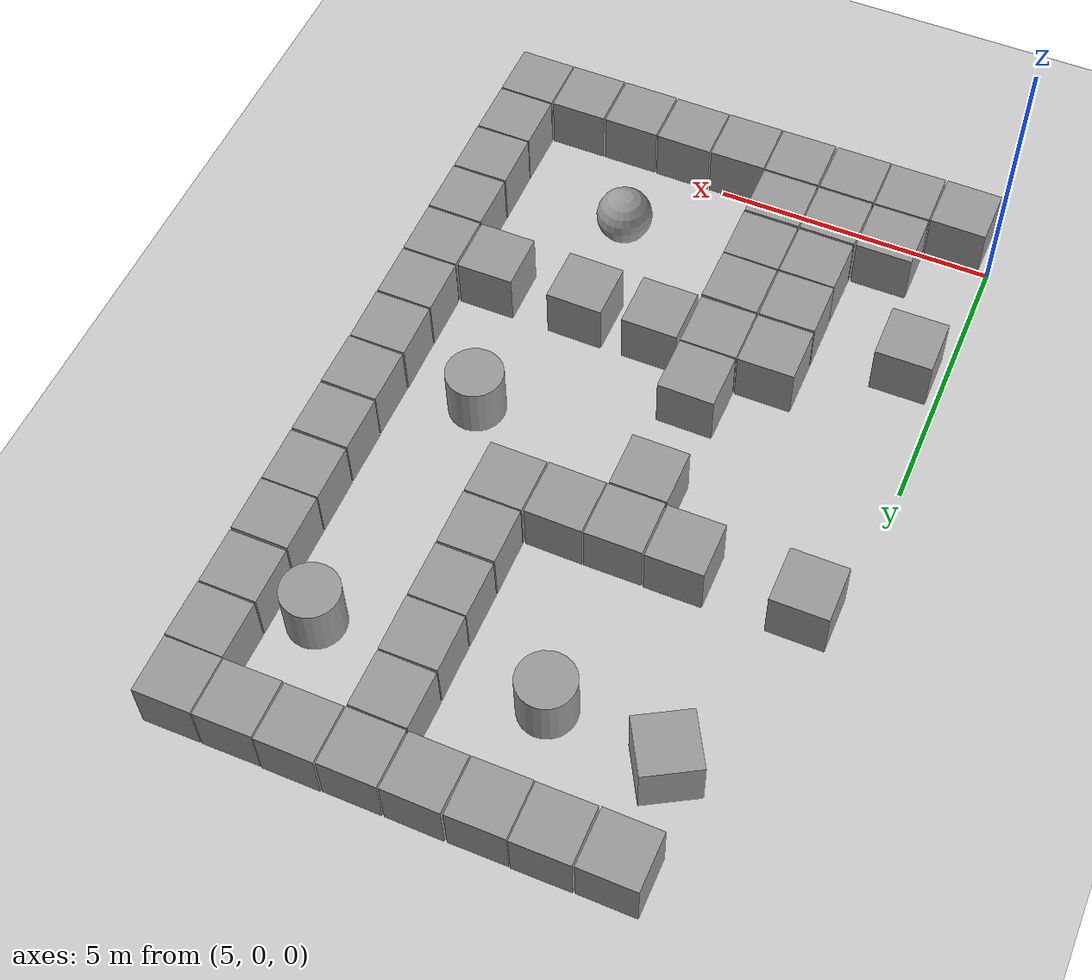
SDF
<sdf version="1.6">
 <world name="hub_mix">
  <include><uri>model://ground_plane</uri></include>
  <include><uri>model://sun</uri></include>
  <model name="unit_box_6">
   <pose>5.6816 -0.5055 0.5 0 0 -0.00564</pose>
   <link name="link">
    <inertial>
     <mass>1</mass>
     <inertia>
      <ixx>0.166667</ixx>
      <ixy>0</ixy>
      <ixz>0</ixz>
      <iyy>0.166667</iyy>
      <iyz>0</iyz>
      <izz>0.166667</izz>
     </inertia>
    </inertial>
    <collision name="collision"><geometry><box><size>1 1 1</size></box></geometry></collision>
    <visual name="visual">
     <geometry><box><size>1 1 1</size></box></geometry>
     <material>
      <script><uri>file://media/materials/scripts/gazebo.material</uri><name>Gazebo/Grey</name></script>
     </material>
    </visual>
   </link>
  </model>
  <model name="unit_box_7">
   <pose>6.7125 -0.4992 0.5 0 0 0.00708</pose>
   <link name="link">
    <inertial>
     <mass>1</mass>
     <inertia>
      <ixx>0.166667</ixx>
      <ixy>0</ixy>
      <ixz>0</ixz>
      <iyy>0.166667</iyy>
      <iyz>0</iyz>
      <izz>0.166667</izz>
     </inertia>
    </inertial>
    <collision name="collision"><geometry><box><size>1 1 1</size></box></geometry></collision>
    <visual name="visual">
     <geometry><box><size>1 1 1</size></box></geometry>
     <material>
      <script><uri>file://media/materials/scripts/gazebo.material</uri><name>Gazebo/Grey</name></script>
     </material>
    </visual>
   </link>
  </model>
  <model name="unit_box_8">
   <pose>7.7346 -0.5032 0.5 0 0 0.00004</pose>
   <link name="link">
    <inertial>
     <mass>1</mass>
     <inertia>
      <ixx>0.166667</ixx>
      <ixy>0</ixy>
      <ixz>0</ixz>
      <iyy>0.166667</iyy>
      <iyz>0</iyz>
      <izz>0.166667</izz>
     </inertia>
    </inertial>
    <collision name="collision"><geometry><box><size>1 1 1</size></box></geometry></collision>
    <visual name="visual">
     <geometry><box><size>1 1 1</size></box></geometry>
     <material>
      <script><uri>file://media/materials/scripts/gazebo.material</uri><name>Gazebo/Grey</name></script>
     </material>
    </visual>
   </link>
  </model>
  <model name="unit_box_9">
   <pose>8.7730 -0.5037 0.5 0 0 0.00554</pose>
   <link name="link">
    <inertial>
     <mass>1</mass>
     <inertia>
      <ixx>0.166667</ixx>
      <ixy>0</ixy>
      <ixz>0</ixz>
      <iyy>0.166667</iyy>
      <iyz>0</iyz>
      <izz>0.166667</izz>
     </inertia>
    </inertial>
    <collision name="collision"><geometry><box><size>1 1 1</size></box></geometry></collision>
    <visual name="visual">
     <geometry><box><size>1 1 1</size></box></geometry>
     <material>
      <script><uri>file://media/materials/scripts/gazebo.material</uri><name>Gazebo/Grey</name></script>
     </material>
    </visual>
   </link>
  </model>
  <model name="unit_box_10">
   <pose>9.7989 -0.5023 0.5 0 0 0.00690</pose>
   <link name="link">
    <inertial>
     <mass>1</mass>
     <inertia>
      <ixx>0.166667</ixx>
      <ixy>0</ixy>
      <ixz>0</ixz>
      <iyy>0.166667</iyy>
      <iyz>0</iyz>
      <izz>0.166667</izz>
     </inertia>
    </inertial>
    <collision name="collision"><geometry><box><size>1 1 1</size></box></geometry></collision>
    <visual name="visual">
     <geometry><box><size>1 1 1</size></box></geometry>
     <material>
      <script><uri>file://media/materials/scripts/gazebo.material</uri><name>Gazebo/Grey</name></script>
     </material>
    </visual>
   </link>
  </model>
  <model name="unit_box_11">
   <pose>10.8253 -0.4948 0.5 0 0 -0.00397</pose>
   <link name="link">
    <inertial>
     <mass>1</mass>
     <inertia>
      <ixx>0.166667</ixx>
      <ixy>0</ixy>
      <ixz>0</ixz>
      <iyy>0.166667</iyy>
      <iyz>0</iyz>
      <izz>0.166667</izz>
     </inertia>
    </inertial>
    <collision name="collision"><geometry><box><size>1 1 1</size></box></geometry></collision>
    <visual name="visual">
     <geometry><box><size>1 1 1</size></box></geometry>
     <material>
      <script><uri>file://media/materials/scripts/gazebo.material</uri><name>Gazebo/Grey</name></script>
     </material>
    </visual>
   </link>
  </model>
  <model name="unit_box_12">
   <pose>11.8583 -0.5036 0.5 0 0 -0.00067</pose>
   <link name="link">
    <inertial>
     <mass>1</mass>
     <inertia>
      <ixx>0.166667</ixx>
      <ixy>0</ixy>
      <ixz>0</ixz>
      <iyy>0.166667</iyy>
      <iyz>0</iyz>
      <izz>0.166667</izz>
     </inertia>
    </inertial>
    <collision name="collision"><geometry><box><size>1 1 1</size></box></geometry></collision>
    <visual name="visual">
     <geometry><box><size>1 1 1</size></box></geometry>
     <material>
      <script><uri>file://media/materials/scripts/gazebo.material</uri><name>Gazebo/Grey</name></script>
     </material>
    </visual>
   </link>
  </model>
  <model name="unit_box_13">
   <pose>12.8941 -0.5033 0.5 0 0 0.00113</pose>
   <link name="link">
    <inertial>
     <mass>1</mass>
     <inertia>
      <ixx>0.166667</ixx>
      <ixy>0</ixy>
      <ixz>0</ixz>
      <iyy>0.166667</iyy>
      <iyz>0</iyz>
      <izz>0.166667</izz>
     </inertia>
    </inertial>
    <collision name="collision"><geometry><box><size>1 1 1</size></box></geometry></collision>
    <visual name="visual">
     <geometry><box><size>1 1 1</size></box></geometry>
     <material>
      <script><uri>file://media/materials/scripts/gazebo.material</uri><name>Gazebo/Grey</name></script>
     </material>
    </visual>
   </link>
  </model>
  <model name="unit_box_14">
   <pose>13.9193 -0.5024 0.5 0 0 -0.00775</pose>
   <link name="link">
    <inertial>
     <mass>1</mass>
     <inertia>
      <ixx>0.166667</ixx>
      <ixy>0</ixy>
      <ixz>0</ixz>
      <iyy>0.166667</iyy>
      <iyz>0</iyz>
      <izz>0.166667</izz>
     </inertia>
    </inertial>
    <collision name="collision"><geometry><box><size>1 1 1</size></box></geometry></collision>
    <visual name="visual">
     <geometry><box><size>1 1 1</size></box></geometry>
     <material>
      <script><uri>file://media/materials/scripts/gazebo.material</uri><name>Gazebo/Grey</name></script>
     </material>
    </visual>
   </link>
  </model>
  <model name="unit_box_22">
   <pose>6.7097 12.8861 0.5 0 0 -0.00467</pose>
   <link name="link">
    <inertial>
     <mass>1</mass>
     <inertia>
      <ixx>0.166667</ixx>
      <ixy>0</ixy>
      <ixz>0</ixz>
      <iyy>0.166667</iyy>
      <iyz>0</iyz>
      <izz>0.166667</izz>
     </inertia>
    </inertial>
    <collision name="collision"><geometry><box><size>1 1 1</size></box></geometry></collision>
    <visual name="visual">
     <geometry><box><size>1 1 1</size></box></geometry>
     <material>
      <script><uri>file://media/materials/scripts/gazebo.material</uri><name>Gazebo/Grey</name></script>
     </material>
    </visual>
   </link>
  </model>
  <model name="unit_box_23">
   <pose>7.7457 12.8936 0.5 0 0 0.00475</pose>
   <link name="link">
    <inertial>
     <mass>1</mass>
     <inertia>
      <ixx>0.166667</ixx>
      <ixy>0</ixy>
      <ixz>0</ixz>
      <iyy>0.166667</iyy>
      <iyz>0</iyz>
      <izz>0.166667</izz>
     </inertia>
    </inertial>
    <collision name="collision"><geometry><box><size>1 1 1</size></box></geometry></collision>
    <visual name="visual">
     <geometry><box><size>1 1 1</size></box></geometry>
     <material>
      <script><uri>file://media/materials/scripts/gazebo.material</uri><name>Gazebo/Grey</name></script>
     </material>
    </visual>
   </link>
  </model>
  <model name="unit_box_24">
   <pose>8.7683 12.8890 0.5 0 0 0.00429</pose>
   <link name="link">
    <inertial>
     <mass>1</mass>
     <inertia>
      <ixx>0.166667</ixx>
      <ixy>0</ixy>
      <ixz>0</ixz>
      <iyy>0.166667</iyy>
      <iyz>0</iyz>
      <izz>0.166667</izz>
     </inertia>
    </inertial>
    <collision name="collision"><geometry><box><size>1 1 1</size></box></geometry></collision>
    <visual name="visual">
     <geometry><box><size>1 1 1</size></box></geometry>
     <material>
      <script><uri>file://media/materials/scripts/gazebo.material</uri><name>Gazebo/Grey</name></script>
     </material>
    </visual>
   </link>
  </model>
  <model name="unit_box_25">
   <pose>9.8007 12.8917 0.5 0 0 -0.00973</pose>
   <link name="link">
    <inertial>
     <mass>1</mass>
     <inertia>
      <ixx>0.166667</ixx>
      <ixy>0</ixy>
      <ixz>0</ixz>
      <iyy>0.166667</iyy>
      <iyz>0</iyz>
      <izz>0.166667</izz>
     </inertia>
    </inertial>
    <collision name="collision"><geometry><box><size>1 1 1</size></box></geometry></collision>
    <visual name="visual">
     <geometry><box><size>1 1 1</size></box></geometry>
     <material>
      <script><uri>file://media/materials/scripts/gazebo.material</uri><name>Gazebo/Grey</name></script>
     </material>
    </visual>
   </link>
  </model>
  <model name="unit_box_26">
   <pose>10.8326 12.8864 0.5 0 0 -0.00361</pose>
   <link name="link">
    <inertial>
     <mass>1</mass>
     <inertia>
      <ixx>0.166667</ixx>
      <ixy>0</ixy>
      <ixz>0</ixz>
      <iyy>0.166667</iyy>
      <iyz>0</iyz>
      <izz>0.166667</izz>
     </inertia>
    </inertial>
    <collision name="collision"><geometry><box><size>1 1 1</size></box></geometry></collision>
    <visual name="visual">
     <geometry><box><size>1 1 1</size></box></geometry>
     <material>
      <script><uri>file://media/materials/scripts/gazebo.material</uri><name>Gazebo/Grey</name></script>
     </material>
    </visual>
   </link>
  </model>
  <model name="unit_box_27">
   <pose>11.8604 12.8954 0.5 0 0 -0.00198</pose>
   <link name="link">
    <inertial>
     <mass>1</mass>
     <inertia>
      <ixx>0.166667</ixx>
      <ixy>0</ixy>
      <ixz>0</ixz>
      <iyy>0.166667</iyy>
      <iyz>0</iyz>
      <izz>0.166667</izz>
     </inertia>
    </inertial>
    <collision name="collision"><geometry><box><size>1 1 1</size></box></geometry></collision>
    <visual name="visual">
     <geometry><box><size>1 1 1</size></box></geometry>
     <material>
      <script><uri>file://media/materials/scripts/gazebo.material</uri><name>Gazebo/Grey</name></script>
     </material>
    </visual>
   </link>
  </model>
  <model name="unit_box_28">
   <pose>12.8918 12.8865 0.5 0 0 0.00920</pose>
   <link name="link">
    <inertial>
     <mass>1</mass>
     <inertia>
      <ixx>0.166667</ixx>
      <ixy>0</ixy>
      <ixz>0</ixz>
      <iyy>0.166667</iyy>
      <iyz>0</iyz>
      <izz>0.166667</izz>
     </inertia>
    </inertial>
    <collision name="collision"><geometry><box><size>1 1 1</size></box></geometry></collision>
    <visual name="visual">
     <geometry><box><size>1 1 1</size></box></geometry>
     <material>
      <script><uri>file://media/materials/scripts/gazebo.material</uri><name>Gazebo/Grey</name></script>
     </material>
    </visual>
   </link>
  </model>
  <model name="unit_box_29">
   <pose>13.9170 12.8905 0.5 0 0 0.00379</pose>
   <link name="link">
    <inertial>
     <mass>1</mass>
     <inertia>
      <ixx>0.166667</ixx>
      <ixy>0</ixy>
      <ixz>0</ixz>
      <iyy>0.166667</iyy>
      <iyz>0</iyz>
      <izz>0.166667</izz>
     </inertia>
    </inertial>
    <collision name="collision"><geometry><box><size>1 1 1</size></box></geometry></collision>
    <visual name="visual">
     <geometry><box><size>1 1 1</size></box></geometry>
     <material>
      <script><uri>file://media/materials/scripts/gazebo.material</uri><name>Gazebo/Grey</name></script>
     </material>
    </visual>
   </link>
  </model>
  <model name="unit_box_42">
   <pose>13.9219 0.5238 0.5 0 0 -0.00483</pose>
   <link name="link">
    <inertial>
     <mass>1</mass>
     <inertia>
      <ixx>0.166667</ixx>
      <ixy>0</ixy>
      <ixz>0</ixz>
      <iyy>0.166667</iyy>
      <iyz>0</iyz>
      <izz>0.166667</izz>
     </inertia>
    </inertial>
    <collision name="collision"><geometry><box><size>1 1 1</size></box></geometry></collision>
    <visual name="visual">
     <geometry><box><size>1 1 1</size></box></geometry>
     <material>
      <script><uri>file://media/materials/scripts/gazebo.material</uri><name>Gazebo/Grey</name></script>
     </material>
    </visual>
   </link>
  </model>
  <model name="unit_box_43">
   <pose>13.9241 1.5502 0.5 0 0 0.00752</pose>
   <link name="link">
    <inertial>
     <mass>1</mass>
     <inertia>
      <ixx>0.166667</ixx>
      <ixy>0</ixy>
      <ixz>0</ixz>
      <iyy>0.166667</iyy>
      <iyz>0</iyz>
      <izz>0.166667</izz>
     </inertia>
    </inertial>
    <collision name="collision"><geometry><box><size>1 1 1</size></box></geometry></collision>
    <visual name="visual">
     <geometry><box><size>1 1 1</size></box></geometry>
     <material>
      <script><uri>file://media/materials/scripts/gazebo.material</uri><name>Gazebo/Grey</name></script>
     </material>
    </visual>
   </link>
  </model>
  <model name="unit_box_44">
   <pose>13.9260 2.5843 0.5 0 0 -0.00164</pose>
   <link name="link">
    <inertial>
     <mass>1</mass>
     <inertia>
      <ixx>0.166667</ixx>
      <ixy>0</ixy>
      <ixz>0</ixz>
      <iyy>0.166667</iyy>
      <iyz>0</iyz>
      <izz>0.166667</izz>
     </inertia>
    </inertial>
    <collision name="collision"><geometry><box><size>1 1 1</size></box></geometry></collision>
    <visual name="visual">
     <geometry><box><size>1 1 1</size></box></geometry>
     <material>
      <script><uri>file://media/materials/scripts/gazebo.material</uri><name>Gazebo/Grey</name></script>
     </material>
    </visual>
   </link>
  </model>
  <model name="unit_box_45">
   <pose>13.9228 3.6181 0.5 0 0 0.00011</pose>
   <link name="link">
    <inertial>
     <mass>1</mass>
     <inertia>
      <ixx>0.166667</ixx>
      <ixy>0</ixy>
      <ixz>0</ixz>
      <iyy>0.166667</iyy>
      <iyz>0</iyz>
      <izz>0.166667</izz>
     </inertia>
    </inertial>
    <collision name="collision"><geometry><box><size>1 1 1</size></box></geometry></collision>
    <visual name="visual">
     <geometry><box><size>1 1 1</size></box></geometry>
     <material>
      <script><uri>file://media/materials/scripts/gazebo.material</uri><name>Gazebo/Grey</name></script>
     </material>
    </visual>
   </link>
  </model>
  <model name="unit_box_46">
   <pose>13.9150 4.6455 0.5 0 0 0.00378</pose>
   <link name="link">
    <inertial>
     <mass>1</mass>
     <inertia>
      <ixx>0.166667</ixx>
      <ixy>0</ixy>
      <ixz>0</ixz>
      <iyy>0.166667</iyy>
      <iyz>0</iyz>
      <izz>0.166667</izz>
     </inertia>
    </inertial>
    <collision name="collision"><geometry><box><size>1 1 1</size></box></geometry></collision>
    <visual name="visual">
     <geometry><box><size>1 1 1</size></box></geometry>
     <material>
      <script><uri>file://media/materials/scripts/gazebo.material</uri><name>Gazebo/Grey</name></script>
     </material>
    </visual>
   </link>
  </model>
  <model name="unit_box_47">
   <pose>13.9142 5.6780 0.5 0 0 0.00872</pose>
   <link name="link">
    <inertial>
     <mass>1</mass>
     <inertia>
      <ixx>0.166667</ixx>
      <ixy>0</ixy>
      <ixz>0</ixz>
      <iyy>0.166667</iyy>
      <iyz>0</iyz>
      <izz>0.166667</izz>
     </inertia>
    </inertial>
    <collision name="collision"><geometry><box><size>1 1 1</size></box></geometry></collision>
    <visual name="visual">
     <geometry><box><size>1 1 1</size></box></geometry>
     <material>
      <script><uri>file://media/materials/scripts/gazebo.material</uri><name>Gazebo/Grey</name></script>
     </material>
    </visual>
   </link>
  </model>
  <model name="unit_box_48">
   <pose>13.9226 6.7080 0.5 0 0 -0.00763</pose>
   <link name="link">
    <inertial>
     <mass>1</mass>
     <inertia>
      <ixx>0.166667</ixx>
      <ixy>0</ixy>
      <ixz>0</ixz>
      <iyy>0.166667</iyy>
      <iyz>0</iyz>
      <izz>0.166667</izz>
     </inertia>
    </inertial>
    <collision name="collision"><geometry><box><size>1 1 1</size></box></geometry></collision>
    <visual name="visual">
     <geometry><box><size>1 1 1</size></box></geometry>
     <material>
      <script><uri>file://media/materials/scripts/gazebo.material</uri><name>Gazebo/Grey</name></script>
     </material>
    </visual>
   </link>
  </model>
  <model name="unit_box_49">
   <pose>13.9209 7.7441 0.5 0 0 -0.00447</pose>
   <link name="link">
    <inertial>
     <mass>1</mass>
     <inertia>
      <ixx>0.166667</ixx>
      <ixy>0</ixy>
      <ixz>0</ixz>
      <iyy>0.166667</iyy>
      <iyz>0</iyz>
      <izz>0.166667</izz>
     </inertia>
    </inertial>
    <collision name="collision"><geometry><box><size>1 1 1</size></box></geometry></collision>
    <visual name="visual">
     <geometry><box><size>1 1 1</size></box></geometry>
     <material>
      <script><uri>file://media/materials/scripts/gazebo.material</uri><name>Gazebo/Grey</name></script>
     </material>
    </visual>
   </link>
  </model>
  <model name="unit_box_50">
   <pose>13.9202 8.7804 0.5 0 0 0.00314</pose>
   <link name="link">
    <inertial>
     <mass>1</mass>
     <inertia>
      <ixx>0.166667</ixx>
      <ixy>0</ixy>
      <ixz>0</ixz>
      <iyy>0.166667</iyy>
      <iyz>0</iyz>
      <izz>0.166667</izz>
     </inertia>
    </inertial>
    <collision name="collision"><geometry><box><size>1 1 1</size></box></geometry></collision>
    <visual name="visual">
     <geometry><box><size>1 1 1</size></box></geometry>
     <material>
      <script><uri>file://media/materials/scripts/gazebo.material</uri><name>Gazebo/Grey</name></script>
     </material>
    </visual>
   </link>
  </model>
  <model name="unit_box_51">
   <pose>13.9205 9.8011 0.5 0 0 -0.00054</pose>
   <link name="link">
    <inertial>
     <mass>1</mass>
     <inertia>
      <ixx>0.166667</ixx>
      <ixy>0</ixy>
      <ixz>0</ixz>
      <iyy>0.166667</iyy>
      <iyz>0</iyz>
      <izz>0.166667</izz>
     </inertia>
    </inertial>
    <collision name="collision"><geometry><box><size>1 1 1</size></box></geometry></collision>
    <visual name="visual">
     <geometry><box><size>1 1 1</size></box></geometry>
     <material>
      <script><uri>file://media/materials/scripts/gazebo.material</uri><name>Gazebo/Grey</name></script>
     </material>
    </visual>
   </link>
  </model>
  <model name="unit_box_52">
   <pose>13.9143 10.8437 0.5 0 0 0.00036</pose>
   <link name="link">
    <inertial>
     <mass>1</mass>
     <inertia>
      <ixx>0.166667</ixx>
      <ixy>0</ixy>
      <ixz>0</ixz>
      <iyy>0.166667</iyy>
      <iyz>0</iyz>
      <izz>0.166667</izz>
     </inertia>
    </inertial>
    <collision name="collision"><geometry><box><size>1 1 1</size></box></geometry></collision>
    <visual name="visual">
     <geometry><box><size>1 1 1</size></box></geometry>
     <material>
      <script><uri>file://media/materials/scripts/gazebo.material</uri><name>Gazebo/Grey</name></script>
     </material>
    </visual>
   </link>
  </model>
  <model name="unit_box_53">
   <pose>13.9212 11.8722 0.5 0 0 -0.00963</pose>
   <link name="link">
    <inertial>
     <mass>1</mass>
     <inertia>
      <ixx>0.166667</ixx>
      <ixy>0</ixy>
      <ixz>0</ixz>
      <iyy>0.166667</iyy>
      <iyz>0</iyz>
      <izz>0.166667</izz>
     </inertia>
    </inertial>
    <collision name="collision"><geometry><box><size>1 1 1</size></box></geometry></collision>
    <visual name="visual">
     <geometry><box><size>1 1 1</size></box></geometry>
     <material>
      <script><uri>file://media/materials/scripts/gazebo.material</uri><name>Gazebo/Grey</name></script>
     </material>
    </visual>
   </link>
  </model>
  <model name="unit_box_58">
   <pose>6.7048 0.5306 0.5 0 0 0.00640</pose>
   <link name="link">
    <inertial>
     <mass>1</mass>
     <inertia>
      <ixx>0.166667</ixx>
      <ixy>0</ixy>
      <ixz>0</ixz>
      <iyy>0.166667</iyy>
      <iyz>0</iyz>
      <izz>0.166667</izz>
     </inertia>
    </inertial>
    <collision name="collision"><geometry><box><size>1 1 1</size></box></geometry></collision>
    <visual name="visual">
     <geometry><box><size>1 1 1</size></box></geometry>
     <material>
      <script><uri>file://media/materials/scripts/gazebo.material</uri><name>Gazebo/Grey</name></script>
     </material>
    </visual>
   </link>
  </model>
  <model name="unit_box_59">
   <pose>7.7388 0.5280 0.5 0 0 -0.00174</pose>
   <link name="link">
    <inertial>
     <mass>1</mass>
     <inertia>
      <ixx>0.166667</ixx>
      <ixy>0</ixy>
      <ixz>0</ixz>
      <iyy>0.166667</iyy>
      <iyz>0</iyz>
      <izz>0.166667</izz>
     </inertia>
    </inertial>
    <collision name="collision"><geometry><box><size>1 1 1</size></box></geometry></collision>
    <visual name="visual">
     <geometry><box><size>1 1 1</size></box></geometry>
     <material>
      <script><uri>file://media/materials/scripts/gazebo.material</uri><name>Gazebo/Grey</name></script>
     </material>
    </visual>
   </link>
  </model>
  <model name="unit_box_60">
   <pose>8.7654 0.5247 0.5 0 0 0.00135</pose>
   <link name="link">
    <inertial>
     <mass>1</mass>
     <inertia>
      <ixx>0.166667</ixx>
      <ixy>0</ixy>
      <ixz>0</ixz>
      <iyy>0.166667</iyy>
      <iyz>0</iyz>
      <izz>0.166667</izz>
     </inertia>
    </inertial>
    <collision name="collision"><geometry><box><size>1 1 1</size></box></geometry></collision>
    <visual name="visual">
     <geometry><box><size>1 1 1</size></box></geometry>
     <material>
      <script><uri>file://media/materials/scripts/gazebo.material</uri><name>Gazebo/Grey</name></script>
     </material>
    </visual>
   </link>
  </model>
  <model name="unit_box_61">
   <pose>7.7438 1.5659 0.5 0 0 -0.00829</pose>
   <link name="link">
    <inertial>
     <mass>1</mass>
     <inertia>
      <ixx>0.166667</ixx>
      <ixy>0</ixy>
      <ixz>0</ixz>
      <iyy>0.166667</iyy>
      <iyz>0</iyz>
      <izz>0.166667</izz>
     </inertia>
    </inertial>
    <collision name="collision"><geometry><box><size>1 1 1</size></box></geometry></collision>
    <visual name="visual">
     <geometry><box><size>1 1 1</size></box></geometry>
     <material>
      <script><uri>file://media/materials/scripts/gazebo.material</uri><name>Gazebo/Grey</name></script>
     </material>
    </visual>
   </link>
  </model>
  <model name="unit_box_62">
   <pose>8.7676 1.5638 0.5 0 0 -0.00436</pose>
   <link name="link">
    <inertial>
     <mass>1</mass>
     <inertia>
      <ixx>0.166667</ixx>
      <ixy>0</ixy>
      <ixz>0</ixz>
      <iyy>0.166667</iyy>
      <iyz>0</iyz>
      <izz>0.166667</izz>
     </inertia>
    </inertial>
    <collision name="collision"><geometry><box><size>1 1 1</size></box></geometry></collision>
    <visual name="visual">
     <geometry><box><size>1 1 1</size></box></geometry>
     <material>
      <script><uri>file://media/materials/scripts/gazebo.material</uri><name>Gazebo/Grey</name></script>
     </material>
    </visual>
   </link>
  </model>
  <model name="unit_box_66">
   <pose>5.6797 2.5932 0.5 0 0 0.00994</pose>
   <link name="link">
    <inertial>
     <mass>1</mass>
     <inertia>
      <ixx>0.166667</ixx>
      <ixy>0</ixy>
      <ixz>0</ixz>
      <iyy>0.166667</iyy>
      <iyz>0</iyz>
      <izz>0.166667</izz>
     </inertia>
    </inertial>
    <collision name="collision"><geometry><box><size>1 1 1</size></box></geometry></collision>
    <visual name="visual">
     <geometry><box><size>1 1 1</size></box></geometry>
     <material>
      <script><uri>file://media/materials/scripts/gazebo.material</uri><name>Gazebo/Grey</name></script>
     </material>
    </visual>
   </link>
  </model>
  <model name="unit_box_67">
   <pose>7.7427 2.5911 0.5 0 0 0.00468</pose>
   <link name="link">
    <inertial>
     <mass>1</mass>
     <inertia>
      <ixx>0.166667</ixx>
      <ixy>0</ixy>
      <ixz>0</ixz>
      <iyy>0.166667</iyy>
      <iyz>0</iyz>
      <izz>0.166667</izz>
     </inertia>
    </inertial>
    <collision name="collision"><geometry><box><size>1 1 1</size></box></geometry></collision>
    <visual name="visual">
     <geometry><box><size>1 1 1</size></box></geometry>
     <material>
      <script><uri>file://media/materials/scripts/gazebo.material</uri><name>Gazebo/Grey</name></script>
     </material>
    </visual>
   </link>
  </model>
  <model name="unit_box_68">
   <pose>8.7751 2.5852 0.5 0 0 -0.00948</pose>
   <link name="link">
    <inertial>
     <mass>1</mass>
     <inertia>
      <ixx>0.166667</ixx>
      <ixy>0</ixy>
      <ixz>0</ixz>
      <iyy>0.166667</iyy>
      <iyz>0</iyz>
      <izz>0.166667</izz>
     </inertia>
    </inertial>
    <collision name="collision"><geometry><box><size>1 1 1</size></box></geometry></collision>
    <visual name="visual">
     <geometry><box><size>1 1 1</size></box></geometry>
     <material>
      <script><uri>file://media/materials/scripts/gazebo.material</uri><name>Gazebo/Grey</name></script>
     </material>
    </visual>
   </link>
  </model>
  <model name="unit_box_74">
   <pose>7.7403 3.6259 0.5 0 0 0.00272</pose>
   <link name="link">
    <inertial>
     <mass>1</mass>
     <inertia>
      <ixx>0.166667</ixx>
      <ixy>0</ixy>
      <ixz>0</ixz>
      <iyy>0.166667</iyy>
      <iyz>0</iyz>
      <izz>0.166667</izz>
     </inertia>
    </inertial>
    <collision name="collision"><geometry><box><size>1 1 1</size></box></geometry></collision>
    <visual name="visual">
     <geometry><box><size>1 1 1</size></box></geometry>
     <material>
      <script><uri>file://media/materials/scripts/gazebo.material</uri><name>Gazebo/Grey</name></script>
     </material>
    </visual>
   </link>
  </model>
  <model name="unit_box_75">
   <pose>8.7653 3.6236 0.5 0 0 0.00544</pose>
   <link name="link">
    <inertial>
     <mass>1</mass>
     <inertia>
      <ixx>0.166667</ixx>
      <ixy>0</ixy>
      <ixz>0</ixz>
      <iyy>0.166667</iyy>
      <iyz>0</iyz>
      <izz>0.166667</izz>
     </inertia>
    </inertial>
    <collision name="collision"><geometry><box><size>1 1 1</size></box></geometry></collision>
    <visual name="visual">
     <geometry><box><size>1 1 1</size></box></geometry>
     <material>
      <script><uri>file://media/materials/scripts/gazebo.material</uri><name>Gazebo/Grey</name></script>
     </material>
    </visual>
   </link>
  </model>
  <model name="unit_box_79">
   <pose>8.7647 4.6465 0.5 0 0 -0.00543</pose>
   <link name="link">
    <inertial>
     <mass>1</mass>
     <inertia>
      <ixx>0.166667</ixx>
      <ixy>0</ixy>
      <ixz>0</ixz>
      <iyy>0.166667</iyy>
      <iyz>0</iyz>
      <izz>0.166667</izz>
     </inertia>
    </inertial>
    <collision name="collision"><geometry><box><size>1 1 1</size></box></geometry></collision>
    <visual name="visual">
     <geometry><box><size>1 1 1</size></box></geometry>
     <material>
      <script><uri>file://media/materials/scripts/gazebo.material</uri><name>Gazebo/Grey</name></script>
     </material>
    </visual>
   </link>
  </model>
  <model name="unit_box_85">
   <pose>8.7651 6.7114 0.5 0 0 0.00180</pose>
   <link name="link">
    <inertial>
     <mass>1</mass>
     <inertia>
      <ixx>0.166667</ixx>
      <ixy>0</ixy>
      <ixz>0</ixz>
      <iyy>0.166667</iyy>
      <iyz>0</iyz>
      <izz>0.166667</izz>
     </inertia>
    </inertial>
    <collision name="collision"><geometry><box><size>1 1 1</size></box></geometry></collision>
    <visual name="visual">
     <geometry><box><size>1 1 1</size></box></geometry>
     <material>
      <script><uri>file://media/materials/scripts/gazebo.material</uri><name>Gazebo/Grey</name></script>
     </material>
    </visual>
   </link>
  </model>
  <model name="unit_box_90">
   <pose>5.6793 7.7367 0.5 0 0 0.00267</pose>
   <link name="link">
    <inertial>
     <mass>1</mass>
     <inertia>
      <ixx>0.166667</ixx>
      <ixy>0</ixy>
      <ixz>0</ixz>
      <iyy>0.166667</iyy>
      <iyz>0</iyz>
      <izz>0.166667</izz>
     </inertia>
    </inertial>
    <collision name="collision"><geometry><box><size>1 1 1</size></box></geometry></collision>
    <visual name="visual">
     <geometry><box><size>1 1 1</size></box></geometry>
     <material>
      <script><uri>file://media/materials/scripts/gazebo.material</uri><name>Gazebo/Grey</name></script>
     </material>
    </visual>
   </link>
  </model>
  <model name="unit_box_91">
   <pose>7.7386 7.7458 0.5 0 0 0.00556</pose>
   <link name="link">
    <inertial>
     <mass>1</mass>
     <inertia>
      <ixx>0.166667</ixx>
      <ixy>0</ixy>
      <ixz>0</ixz>
      <iyy>0.166667</iyy>
      <iyz>0</iyz>
      <izz>0.166667</izz>
     </inertia>
    </inertial>
    <collision name="collision"><geometry><box><size>1 1 1</size></box></geometry></collision>
    <visual name="visual">
     <geometry><box><size>1 1 1</size></box></geometry>
     <material>
      <script><uri>file://media/materials/scripts/gazebo.material</uri><name>Gazebo/Grey</name></script>
     </material>
    </visual>
   </link>
  </model>
  <model name="unit_box_92">
   <pose>8.7743 7.7373 0.5 0 0 0.00559</pose>
   <link name="link">
    <inertial>
     <mass>1</mass>
     <inertia>
      <ixx>0.166667</ixx>
      <ixy>0</ixy>
      <ixz>0</ixz>
      <iyy>0.166667</iyy>
      <iyz>0</iyz>
      <izz>0.166667</izz>
     </inertia>
    </inertial>
    <collision name="collision"><geometry><box><size>1 1 1</size></box></geometry></collision>
    <visual name="visual">
     <geometry><box><size>1 1 1</size></box></geometry>
     <material>
      <script><uri>file://media/materials/scripts/gazebo.material</uri><name>Gazebo/Grey</name></script>
     </material>
    </visual>
   </link>
  </model>
  <model name="unit_box_93">
   <pose>9.7991 7.7370 0.5 0 0 -0.00803</pose>
   <link name="link">
    <inertial>
     <mass>1</mass>
     <inertia>
      <ixx>0.166667</ixx>
      <ixy>0</ixy>
      <ixz>0</ixz>
      <iyy>0.166667</iyy>
      <iyz>0</iyz>
      <izz>0.166667</izz>
     </inertia>
    </inertial>
    <collision name="collision"><geometry><box><size>1 1 1</size></box></geometry></collision>
    <visual name="visual">
     <geometry><box><size>1 1 1</size></box></geometry>
     <material>
      <script><uri>file://media/materials/scripts/gazebo.material</uri><name>Gazebo/Grey</name></script>
     </material>
    </visual>
   </link>
  </model>
  <model name="unit_box_94">
   <pose>10.8301 7.7418 0.5 0 0 -0.00512</pose>
   <link name="link">
    <inertial>
     <mass>1</mass>
     <inertia>
      <ixx>0.166667</ixx>
      <ixy>0</ixy>
      <ixz>0</ixz>
      <iyy>0.166667</iyy>
      <iyz>0</iyz>
      <izz>0.166667</izz>
     </inertia>
    </inertial>
    <collision name="collision"><geometry><box><size>1 1 1</size></box></geometry></collision>
    <visual name="visual">
     <geometry><box><size>1 1 1</size></box></geometry>
     <material>
      <script><uri>file://media/materials/scripts/gazebo.material</uri><name>Gazebo/Grey</name></script>
     </material>
    </visual>
   </link>
  </model>
  <model name="unit_box_97">
   <pose>10.8357 8.7675 0.5 0 0 0.00510</pose>
   <link name="link">
    <inertial>
     <mass>1</mass>
     <inertia>
      <ixx>0.166667</ixx>
      <ixy>0</ixy>
      <ixz>0</ixz>
      <iyy>0.166667</iyy>
      <iyz>0</iyz>
      <izz>0.166667</izz>
     </inertia>
    </inertial>
    <collision name="collision"><geometry><box><size>1 1 1</size></box></geometry></collision>
    <visual name="visual">
     <geometry><box><size>1 1 1</size></box></geometry>
     <material>
      <script><uri>file://media/materials/scripts/gazebo.material</uri><name>Gazebo/Grey</name></script>
     </material>
    </visual>
   </link>
  </model>
  <model name="unit_box_100">
   <pose>10.8331 9.8050 0.5 0 0 -0.00188</pose>
   <link name="link">
    <inertial>
     <mass>1</mass>
     <inertia>
      <ixx>0.166667</ixx>
      <ixy>0</ixy>
      <ixz>0</ixz>
      <iyy>0.166667</iyy>
      <iyz>0</iyz>
      <izz>0.166667</izz>
     </inertia>
    </inertial>
    <collision name="collision"><geometry><box><size>1 1 1</size></box></geometry></collision>
    <visual name="visual">
     <geometry><box><size>1 1 1</size></box></geometry>
     <material>
      <script><uri>file://media/materials/scripts/gazebo.material</uri><name>Gazebo/Grey</name></script>
     </material>
    </visual>
   </link>
  </model>
  <model name="unit_box_103">
   <pose>10.8336 10.8295 0.5 0 0 0.00637</pose>
   <link name="link">
    <inertial>
     <mass>1</mass>
     <inertia>
      <ixx>0.166667</ixx>
      <ixy>0</ixy>
      <ixz>0</ixz>
      <iyy>0.166667</iyy>
      <iyz>0</iyz>
      <izz>0.166667</izz>
     </inertia>
    </inertial>
    <collision name="collision"><geometry><box><size>1 1 1</size></box></geometry></collision>
    <visual name="visual">
     <geometry><box><size>1 1 1</size></box></geometry>
     <material>
      <script><uri>file://media/materials/scripts/gazebo.material</uri><name>Gazebo/Grey</name></script>
     </material>
    </visual>
   </link>
  </model>
  <model name="unit_box_106">
   <pose>10.8303 11.8590 0.5 0 0 -0.00962</pose>
   <link name="link">
    <inertial>
     <mass>1</mass>
     <inertia>
      <ixx>0.166667</ixx>
      <ixy>0</ixy>
      <ixz>0</ixz>
      <iyy>0.166667</iyy>
      <iyz>0</iyz>
      <izz>0.166667</izz>
     </inertia>
    </inertial>
    <collision name="collision"><geometry><box><size>1 1 1</size></box></geometry></collision>
    <visual name="visual">
     <geometry><box><size>1 1 1</size></box></geometry>
     <material>
      <script><uri>file://media/materials/scripts/gazebo.material</uri><name>Gazebo/Grey</name></script>
     </material>
    </visual>
   </link>
  </model>
  <model name="unit_box_107">
   <pose>9.8341 3.6194 0.5 0 0 -0.00043</pose>
   <link name="link">
    <inertial>
     <mass>1</mass>
     <inertia>
      <ixx>0.166667</ixx>
      <ixy>0</ixy>
      <ixz>0</ixz>
      <iyy>0.166667</iyy>
      <iyz>0</iyz>
      <izz>0.166667</izz>
     </inertia>
    </inertial>
    <collision name="collision"><geometry><box><size>1 1 1</size></box></geometry></collision>
    <visual name="visual">
     <geometry><box><size>1 1 1</size></box></geometry>
     <material>
      <script><uri>file://media/materials/scripts/gazebo.material</uri><name>Gazebo/Grey</name></script>
     </material>
    </visual>
   </link>
  </model>
  <model name="unit_box_108">
   <pose>11.2109 3.6215 0.5 0 0 -0.00789</pose>
   <link name="link">
    <inertial>
     <mass>1</mass>
     <inertia>
      <ixx>0.166667</ixx>
      <ixy>0</ixy>
      <ixz>0</ixz>
      <iyy>0.166667</iyy>
      <iyz>0</iyz>
      <izz>0.166667</izz>
     </inertia>
    </inertial>
    <collision name="collision"><geometry><box><size>1 1 1</size></box></geometry></collision>
    <visual name="visual">
     <geometry><box><size>1 1 1</size></box></geometry>
     <material>
      <script><uri>file://media/materials/scripts/gazebo.material</uri><name>Gazebo/Grey</name></script>
     </material>
    </visual>
   </link>
  </model>
  <model name="unit_box_109">
   <pose>12.8864 3.6152 0.5 0 0 0.00289</pose>
   <link name="link">
    <inertial>
     <mass>1</mass>
     <inertia>
      <ixx>0.166667</ixx>
      <ixy>0</ixy>
      <ixz>0</ixz>
      <iyy>0.166667</iyy>
      <iyz>0</iyz>
      <izz>0.166667</izz>
     </inertia>
    </inertial>
    <collision name="collision"><geometry><box><size>1 1 1</size></box></geometry></collision>
    <visual name="visual">
     <geometry><box><size>1 1 1</size></box></geometry>
     <material>
      <script><uri>file://media/materials/scripts/gazebo.material</uri><name>Gazebo/Grey</name></script>
     </material>
    </visual>
   </link>
  </model>
  <model name="unit_box_110">
   <pose>6.7100 11.0800 0.5 0 0 0.52360</pose>
   <link name="link">
    <inertial>
     <mass>1</mass>
     <inertia>
      <ixx>0.166667</ixx>
      <ixy>0</ixy>
      <ixz>0</ixz>
      <iyy>0.166667</iyy>
      <iyz>0</iyz>
      <izz>0.166667</izz>
     </inertia>
    </inertial>
    <collision name="collision"><geometry><box><size>1 1 1</size></box></geometry></collision>
    <visual name="visual">
     <geometry><box><size>1 1 1</size></box></geometry>
     <material>
      <script><uri>file://media/materials/scripts/gazebo.material</uri><name>Gazebo/Grey</name></script>
     </material>
    </visual>
   </link>
  </model>
  <model name="unit_sphere_1">
   <pose>11.3300 1.5600 0.5 0 0 0.00000</pose>
   <link name="link">
    <inertial>
     <mass>1</mass>
     <inertia>
      <ixx>0.166667</ixx>
      <ixy>0</ixy>
      <ixz>0</ixz>
      <iyy>0.166667</iyy>
      <iyz>0</iyz>
      <izz>0.166667</izz>
     </inertia>
    </inertial>
    <collision name="collision"><geometry><sphere><radius>0.5</radius></sphere></geometry></collision>
    <visual name="visual">
     <geometry><sphere><radius>0.5</radius></sphere></geometry>
     <material>
      <script><uri>file://media/materials/scripts/gazebo.material</uri><name>Gazebo/Grey</name></script>
     </material>
    </visual>
   </link>
  </model>
  <model name="unit_cylinder_0">
   <pose>8.7700 10.8300 0.5 0 0 0.00000</pose>
   <link name="link">
    <inertial>
     <mass>1</mass>
     <inertia>
      <ixx>0.166667</ixx>
      <ixy>0</ixy>
      <ixz>0</ixz>
      <iyy>0.166667</iyy>
      <iyz>0</iyz>
      <izz>0.166667</izz>
     </inertia>
    </inertial>
    <collision name="collision">
     <geometry><cylinder><radius>0.5</radius><length>1</length></cylinder></geometry>
    </collision>
    <visual name="visual">
     <geometry><cylinder><radius>0.5</radius><length>1</length></cylinder></geometry>
     <material>
      <script><uri>file://media/materials/scripts/gazebo.material</uri><name>Gazebo/Grey</name></script>
     </material>
    </visual>
   </link>
  </model>
  <model name="unit_cylinder_1">
   <pose>12.1600 6.0800 0.5 0 0 0.00000</pose>
   <link name="link">
    <inertial>
     <mass>1</mass>
     <inertia>
      <ixx>0.166667</ixx>
      <ixy>0</ixy>
      <ixz>0</ixz>
      <iyy>0.166667</iyy>
      <iyz>0</iyz>
      <izz>0.166667</izz>
     </inertia>
    </inertial>
    <collision name="collision">
     <geometry><cylinder><radius>0.5</radius><length>1</length></cylinder></geometry>
    </collision>
    <visual name="visual">
     <geometry><cylinder><radius>0.5</radius><length>1</length></cylinder></geometry>
     <material>
      <script><uri>file://media/materials/scripts/gazebo.material</uri><name>Gazebo/Grey</name></script>
     </material>
    </visual>
   </link>
  </model>
  <model name="unit_cylinder_2">
   <pose>12.7500 10.8300 0.5 0 0 0.00000</pose>
   <link name="link">
    <inertial>
     <mass>1</mass>
     <inertia>
      <ixx>0.166667</ixx>
      <ixy>0</ixy>
      <ixz>0</ixz>
      <iyy>0.166667</iyy>
      <iyz>0</iyz>
      <izz>0.166667</izz>
     </inertia>
    </inertial>
    <collision name="collision">
     <geometry><cylinder><radius>0.5</radius><length>1</length></cylinder></geometry>
    </collision>
    <visual name="visual">
     <geometry><cylinder><radius>0.5</radius><length>1</length></cylinder></geometry>
     <material>
      <script><uri>file://media/materials/scripts/gazebo.material</uri><name>Gazebo/Grey</name></script>
     </material>
    </visual>
   </link>
  </model>
 </world>
</sdf>
